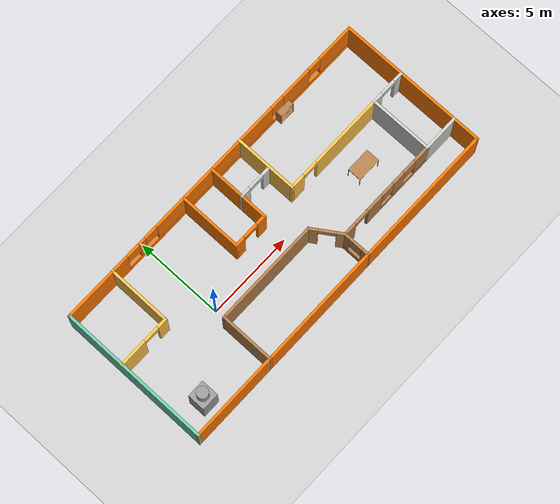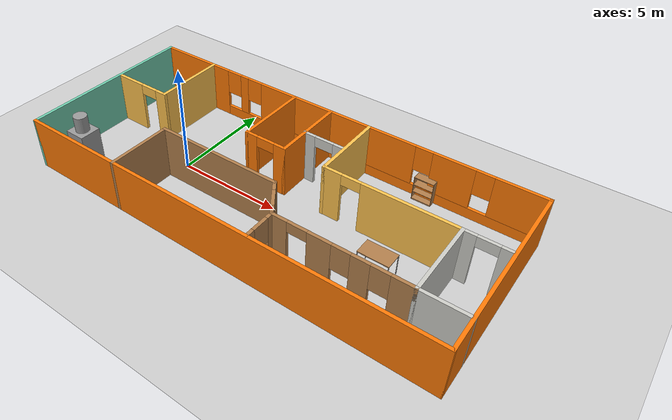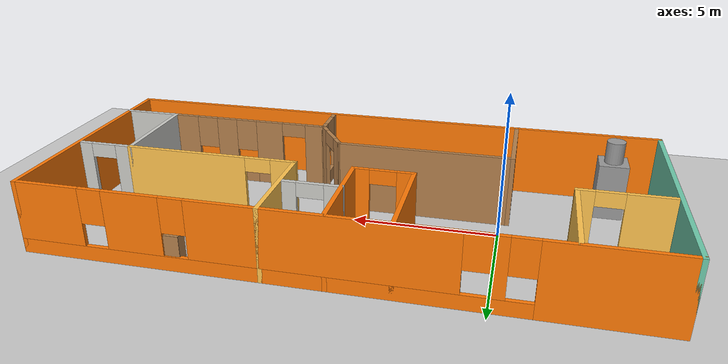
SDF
<sdf version="1.6">
 <world name="default">
  <model name="ground_plane">
   <static>1</static>
   <link name="link">
    <collision name="collision">
     <geometry><plane><normal>0 0 1</normal><size>100 100</size></plane></geometry>
     <surface><friction><ode><mu>100</mu><mu2>50</mu2></ode></friction></surface>
    </collision>
    <visual name="visual">
     <cast_shadows>0</cast_shadows>
     <geometry><plane><normal>0 0 1</normal><size>100 100</size></plane></geometry>
     <material>
      <script><uri>file://media/materials/scripts/gazebo.material</uri><name>Gazebo/Grey</name></script>
     </material>
    </visual>
   </link>
  </model>
  <model name="Building">
   <pose>4.7412 0.361822 0 0 -0 0</pose>
   <link name="Wall_0">
    <collision name="Wall_0_Collision">
     <geometry><box><size>20.15 0.15 2.5</size></box></geometry>
     <pose>0 0 1.25 0 -0 0</pose>
    </collision>
    <visual name="Wall_0_Visual">
     <pose>0 0 1.25 0 -0 0</pose>
     <geometry><box><size>20.15 0.15 2.5</size></box></geometry>
     <material>
      <script><uri>file://media/materials/scripts/gazebo.material</uri><name>Gazebo/Grey</name></script>
      <ambient>0.996078 0.47451 0.0196078 1</ambient>
     </material>
    </visual>
    <pose>0 -4.25 0 0 -0 0</pose>
   </link>
   <link name="Wall_10">
    <pose>-8.5 0.75 0 0 -0 3.14159</pose>
    <visual name="Wall_10_Visual_0">
     <pose>-1.26846 0 1.25 0 -0 0</pose>
     <geometry><box><size>0.613081 0.15 2.5</size></box></geometry>
     <material>
      <script><uri>file://media/materials/scripts/gazebo.material</uri><name>Gazebo/Grey</name></script>
      <ambient>1 0.764706 0.305882 1</ambient>
     </material>
    </visual>
    <collision name="Wall_10_Collision_0">
     <geometry><box><size>0.613081 0.15 2.5</size></box></geometry>
     <pose>-1.26846 0 1.25 0 -0 0</pose>
    </collision>
    <visual name="Wall_10_Visual_1">
     <pose>0.75654 0 1.25 0 -0 0</pose>
     <geometry><box><size>1.63692 0.15 2.5</size></box></geometry>
     <material>
      <script><uri>file://media/materials/scripts/gazebo.material</uri><name>Gazebo/Grey</name></script>
      <ambient>1 0.764706 0.305882 1</ambient>
     </material>
    </visual>
    <collision name="Wall_10_Collision_1">
     <geometry><box><size>1.63692 0.15 2.5</size></box></geometry>
     <pose>0.75654 0 1.25 0 -0 0</pose>
    </collision>
    <visual name="Wall_10_Visual_2">
     <pose>-0.511919 0 2.25 0 -0 0</pose>
     <geometry><box><size>0.9 0.15 0.5</size></box></geometry>
     <material>
      <script><uri>file://media/materials/scripts/gazebo.material</uri><name>Gazebo/Grey</name></script>
      <ambient>1 0.764706 0.305882 1</ambient>
     </material>
    </visual>
    <collision name="Wall_10_Collision_2">
     <geometry><box><size>0.9 0.15 0.5</size></box></geometry>
     <pose>-0.511919 0 2.25 0 -0 0</pose>
    </collision>
   </link>
   <link name="Wall_12">
    <collision name="Wall_12_Collision">
     <geometry><box><size>3.65 0.15 2.5</size></box></geometry>
     <pose>0 0 1.25 0 -0 0</pose>
    </collision>
    <visual name="Wall_12_Visual">
     <pose>0 0 1.25 0 -0 0</pose>
     <geometry><box><size>3.65 0.15 2.5</size></box></geometry>
     <material>
      <script><uri>file://media/materials/scripts/gazebo.material</uri><name>Gazebo/Grey</name></script>
      <ambient>0.996078 0.47451 0.0196078 1</ambient>
     </material>
    </visual>
    <pose>-2 2.5 0 0 0 -1.5708</pose>
   </link>
   <link name="Wall_14">
    <collision name="Wall_14_Collision">
     <geometry><box><size>3.65 0.15 2.5</size></box></geometry>
     <pose>0 0 1.25 0 -0 0</pose>
    </collision>
    <visual name="Wall_14_Visual">
     <pose>0 0 1.25 0 -0 0</pose>
     <geometry><box><size>3.65 0.15 2.5</size></box></geometry>
     <material>
      <script><uri>file://media/materials/scripts/gazebo.material</uri><name>Gazebo/Grey</name></script>
      <ambient>1 0.764706 0.305882 1</ambient>
     </material>
    </visual>
    <pose>2 2.5 0 0 -0 1.5708</pose>
   </link>
   <link name="Wall_16">
    <pose>-1 0.75 0 0 -0 0</pose>
    <visual name="Wall_16_Visual_0">
     <pose>-0.758614 0 1.25 0 -0 0</pose>
     <geometry><box><size>0.632771 0.15 2.5</size></box></geometry>
     <material>
      <script><uri>file://media/materials/scripts/gazebo.material</uri><name>Gazebo/Grey</name></script>
      <ambient>0.996078 0.47451 0.0196078 1</ambient>
     </material>
    </visual>
    <collision name="Wall_16_Collision_0">
     <geometry><box><size>0.632771 0.15 2.5</size></box></geometry>
     <pose>-0.758614 0 1.25 0 -0 0</pose>
    </collision>
    <visual name="Wall_16_Visual_1">
     <pose>0.766386 0 1.25 0 -0 0</pose>
     <geometry><box><size>0.617229 0.15 2.5</size></box></geometry>
     <material>
      <script><uri>file://media/materials/scripts/gazebo.material</uri><name>Gazebo/Grey</name></script>
      <ambient>0.996078 0.47451 0.0196078 1</ambient>
     </material>
    </visual>
    <collision name="Wall_16_Collision_1">
     <geometry><box><size>0.617229 0.15 2.5</size></box></geometry>
     <pose>0.766386 0 1.25 0 -0 0</pose>
    </collision>
    <visual name="Wall_16_Visual_2">
     <pose>0.007771 0 2.25 0 -0 0</pose>
     <geometry><box><size>0.9 0.15 0.5</size></box></geometry>
     <material>
      <script><uri>file://media/materials/scripts/gazebo.material</uri><name>Gazebo/Grey</name></script>
      <ambient>0.996078 0.47451 0.0196078 1</ambient>
     </material>
    </visual>
    <collision name="Wall_16_Collision_2">
     <geometry><box><size>0.9 0.15 0.5</size></box></geometry>
     <pose>0.007771 0 2.25 0 -0 0</pose>
    </collision>
   </link>
   <link name="Wall_17">
    <collision name="Wall_17_Collision">
     <geometry><box><size>3.65 0.15 2.5</size></box></geometry>
     <pose>0 0 1.25 0 -0 0</pose>
    </collision>
    <visual name="Wall_17_Visual">
     <pose>0 0 1.25 0 -0 0</pose>
     <geometry><box><size>3.65 0.15 2.5</size></box></geometry>
     <material>
      <script><uri>file://media/materials/scripts/gazebo.material</uri><name>Gazebo/Grey</name></script>
      <ambient>0.996078 0.47451 0.0196078 1</ambient>
     </material>
    </visual>
    <pose>0 2.5 0 0 -0 1.5708</pose>
   </link>
   <link name="Wall_19">
    <pose>1 2.25 0 0 -0 0</pose>
    <visual name="Wall_19_Visual_0">
     <pose>-0.761107 0 1.25 0 -0 0</pose>
     <geometry><box><size>0.627787 0.15 2.5</size></box></geometry>
     <material>
      <script><uri>file://media/materials/scripts/gazebo.material</uri><name>Gazebo/CeilingTiled</name></script>
      <ambient>1 0.764706 0.305882 1</ambient>
     </material>
    </visual>
    <collision name="Wall_19_Collision_0">
     <geometry><box><size>0.627787 0.15 2.5</size></box></geometry>
     <pose>-0.761107 0 1.25 0 -0 0</pose>
    </collision>
    <visual name="Wall_19_Visual_1">
     <pose>0.763893 0 1.25 0 -0 0</pose>
     <geometry><box><size>0.622213 0.15 2.5</size></box></geometry>
     <material>
      <script><uri>file://media/materials/scripts/gazebo.material</uri><name>Gazebo/CeilingTiled</name></script>
      <ambient>1 0.764706 0.305882 1</ambient>
     </material>
    </visual>
    <collision name="Wall_19_Collision_1">
     <geometry><box><size>0.622213 0.15 2.5</size></box></geometry>
     <pose>0.763893 0 1.25 0 -0 0</pose>
    </collision>
    <visual name="Wall_19_Visual_2">
     <pose>0.002787 0 2.25 0 -0 0</pose>
     <geometry><box><size>0.9 0.15 0.5</size></box></geometry>
     <material>
      <script><uri>file://media/materials/scripts/gazebo.material</uri><name>Gazebo/CeilingTiled</name></script>
      <ambient>1 0.764706 0.305882 1</ambient>
     </material>
    </visual>
    <collision name="Wall_19_Collision_2">
     <geometry><box><size>0.9 0.15 0.5</size></box></geometry>
     <pose>0.002787 0 2.25 0 -0 0</pose>
    </collision>
   </link>
   <link name="Wall_2">
    <collision name="Wall_2_Collision">
     <geometry><box><size>8.65 0.15 2.5</size></box></geometry>
     <pose>0 0 1.25 0 -0 0</pose>
    </collision>
    <visual name="Wall_2_Visual">
     <pose>0 0 1.25 0 -0 0</pose>
     <geometry><box><size>8.65 0.15 2.5</size></box></geometry>
     <material>
      <script><uri>file://media/materials/scripts/gazebo.material</uri><name>Gazebo/Grey</name></script>
      <ambient>0.435294 0.796078 0.67451 1</ambient>
     </material>
    </visual>
    <pose>-10 0 0 0 -0 1.5708</pose>
   </link>
   <link name="Wall_25">
    <collision name="Wall_25_Collision">
     <geometry><box><size>2.15 0.15 2.5</size></box></geometry>
     <pose>0 0 1.25 0 -0 0</pose>
    </collision>
    <visual name="Wall_25_Visual">
     <pose>0 0 1.25 0 -0 0</pose>
     <geometry><box><size>2.15 0.15 2.5</size></box></geometry>
     <material>
      <script><uri>file://media/materials/scripts/gazebo.material</uri><name>Gazebo/CeilingTiled</name></script>
      <ambient>1 1 1 1</ambient>
     </material>
    </visual>
    <pose>9 -2.75 0 0 -0 0</pose>
   </link>
   <link name="Wall_27">
    <pose>5 0.75 0 0 -0 0</pose>
    <visual name="Wall_27_Visual_0">
     <pose>-2.6173 0 1.25 0 -0 0</pose>
     <geometry><box><size>0.915403 0.15 2.5</size></box></geometry>
     <material>
      <script><uri>file://media/materials/scripts/gazebo.material</uri><name>Gazebo/Grey</name></script>
      <ambient>1 0.764706 0.305882 1</ambient>
     </material>
    </visual>
    <collision name="Wall_27_Collision_0">
     <geometry><box><size>0.915403 0.15 2.5</size></box></geometry>
     <pose>-2.6173 0 1.25 0 -0 0</pose>
    </collision>
    <visual name="Wall_27_Visual_1">
     <pose>0.907702 0 1.25 0 -0 0</pose>
     <geometry><box><size>4.3346 0.15 2.5</size></box></geometry>
     <material>
      <script><uri>file://media/materials/scripts/gazebo.material</uri><name>Gazebo/Grey</name></script>
      <ambient>1 0.764706 0.305882 1</ambient>
     </material>
    </visual>
    <collision name="Wall_27_Collision_1">
     <geometry><box><size>4.3346 0.15 2.5</size></box></geometry>
     <pose>0.907702 0 1.25 0 -0 0</pose>
    </collision>
    <visual name="Wall_27_Visual_2">
     <pose>-1.7096 0 2.25 0 -0 0</pose>
     <geometry><box><size>0.9 0.15 0.5</size></box></geometry>
     <material>
      <script><uri>file://media/materials/scripts/gazebo.material</uri><name>Gazebo/Grey</name></script>
      <ambient>1 0.764706 0.305882 1</ambient>
     </material>
    </visual>
    <collision name="Wall_27_Collision_2">
     <geometry><box><size>0.9 0.15 0.5</size></box></geometry>
     <pose>-1.7096 0 2.25 0 -0 0</pose>
    </collision>
   </link>
   <link name="Wall_29">
    <collision name="Wall_29_Collision">
     <geometry><box><size>3.65 0.15 2.5</size></box></geometry>
     <pose>0 0 1.25 0 -0 0</pose>
    </collision>
    <visual name="Wall_29_Visual">
     <pose>0 0 1.25 0 -0 0</pose>
     <geometry><box><size>3.65 0.15 2.5</size></box></geometry>
     <material>
      <script><uri>file://media/materials/scripts/gazebo.material</uri><name>Gazebo/CeilingTiled</name></script>
      <ambient>1 1 1 1</ambient>
     </material>
    </visual>
    <pose>8 -1 0 0 0 -1.5708</pose>
   </link>
   <link name="Wall_31">
    <pose>9 0.75 0 0 -0 0</pose>
    <visual name="Wall_31_Visual_0">
     <pose>-0.757777 0 1.25 0 -0 0</pose>
     <geometry><box><size>0.634446 0.15 2.5</size></box></geometry>
     <material>
      <script><uri>file://media/materials/scripts/gazebo.material</uri><name>Gazebo/CeilingTiled</name></script>
      <ambient>1 1 1 1</ambient>
     </material>
    </visual>
    <collision name="Wall_31_Collision_0">
     <geometry><box><size>0.634446 0.15 2.5</size></box></geometry>
     <pose>-0.757777 0 1.25 0 -0 0</pose>
    </collision>
    <visual name="Wall_31_Visual_1">
     <pose>0.767223 0 1.25 0 -0 0</pose>
     <geometry><box><size>0.615554 0.15 2.5</size></box></geometry>
     <material>
      <script><uri>file://media/materials/scripts/gazebo.material</uri><name>Gazebo/CeilingTiled</name></script>
      <ambient>1 1 1 1</ambient>
     </material>
    </visual>
    <collision name="Wall_31_Collision_1">
     <geometry><box><size>0.615554 0.15 2.5</size></box></geometry>
     <pose>0.767223 0 1.25 0 -0 0</pose>
    </collision>
    <visual name="Wall_31_Visual_2">
     <pose>0.009446 0 2.25 0 -0 0</pose>
     <geometry><box><size>0.9 0.15 0.5</size></box></geometry>
     <material>
      <script><uri>file://media/materials/scripts/gazebo.material</uri><name>Gazebo/CeilingTiled</name></script>
      <ambient>1 1 1 1</ambient>
     </material>
    </visual>
    <collision name="Wall_31_Collision_2">
     <geometry><box><size>0.9 0.15 0.5</size></box></geometry>
     <pose>0.009446 0 2.25 0 -0 0</pose>
    </collision>
   </link>
   <link name="Wall_35">
    <collision name="Wall_35_Collision">
     <geometry><box><size>3.15 0.15 2.5</size></box></geometry>
     <pose>0 0 1.25 0 -0 0</pose>
    </collision>
    <visual name="Wall_35_Visual">
     <pose>0 0 1.25 0 -0 0</pose>
     <geometry><box><size>3.15 0.15 2.5</size></box></geometry>
     <material>
      <script><uri>file://media/materials/scripts/gazebo.material</uri><name>Gazebo/Wood</name></script>
      <ambient>0.996078 0.47451 0.0196078 1</ambient>
     </material>
    </visual>
    <pose>-5 -2.75 0 0 0 -1.5708</pose>
   </link>
   <link name="Wall_37">
    <collision name="Wall_37_Collision">
     <geometry><box><size>6.15 0.15 2.5</size></box></geometry>
     <pose>0 0 1.25 0 -0 0</pose>
    </collision>
    <visual name="Wall_37_Visual">
     <pose>0 0 1.25 0 -0 0</pose>
     <geometry><box><size>6.15 0.15 2.5</size></box></geometry>
     <material>
      <script><uri>file://media/materials/scripts/gazebo.material</uri><name>Gazebo/Wood</name></script>
      <ambient>0.996078 0.47451 0.0196078 1</ambient>
     </material>
    </visual>
    <pose>-2 -1.25 0 0 -0 0</pose>
   </link>
   <link name="Wall_39">
    <pose>2 -3.5 0 0 -0 1.5708</pose>
    <visual name="Wall_39_Visual_0">
     <pose>-0.594128 0 1.25 0 -0 0</pose>
     <geometry><box><size>0.461743 0.15 2.5</size></box></geometry>
     <material>
      <script><uri>file://media/materials/scripts/gazebo.material</uri><name>Gazebo/Wood</name></script>
      <ambient>0.996078 0.47451 0.0196078 1</ambient>
     </material>
    </visual>
    <collision name="Wall_39_Collision_0">
     <geometry><box><size>0.461743 0.15 2.5</size></box></geometry>
     <pose>-0.594128 0 1.25 0 -0 0</pose>
    </collision>
    <visual name="Wall_39_Visual_1">
     <pose>0.230872 0 0.25 0 -0 0</pose>
     <geometry><box><size>1.18826 0.15 0.5</size></box></geometry>
     <material>
      <script><uri>file://media/materials/scripts/gazebo.material</uri><name>Gazebo/Wood</name></script>
      <ambient>0.996078 0.47451 0.0196078 1</ambient>
     </material>
    </visual>
    <collision name="Wall_39_Collision_1">
     <geometry><box><size>1.18826 0.15 0.5</size></box></geometry>
     <pose>0.230872 0 0.25 0 -0 0</pose>
    </collision>
    <visual name="Wall_39_Visual_2">
     <pose>0.630872 0 1.5 0 -0 0</pose>
     <geometry><box><size>0.388257 0.15 2</size></box></geometry>
     <material>
      <script><uri>file://media/materials/scripts/gazebo.material</uri><name>Gazebo/Wood</name></script>
      <ambient>0.996078 0.47451 0.0196078 1</ambient>
     </material>
    </visual>
    <collision name="Wall_39_Collision_2">
     <geometry><box><size>0.388257 0.15 2</size></box></geometry>
     <pose>0.630872 0 1.5 0 -0 0</pose>
    </collision>
    <visual name="Wall_39_Visual_3">
     <pose>0.036743 0 1.9 0 -0 0</pose>
     <geometry><box><size>0.8 0.15 1.2</size></box></geometry>
     <material>
      <script><uri>file://media/materials/scripts/gazebo.material</uri><name>Gazebo/Wood</name></script>
      <ambient>0.996078 0.47451 0.0196078 1</ambient>
     </material>
    </visual>
    <collision name="Wall_39_Collision_3">
     <geometry><box><size>0.8 0.15 1.2</size></box></geometry>
     <pose>0.036743 0 1.9 0 -0 0</pose>
    </collision>
   </link>
   <link name="Wall_4">
    <pose>0 4.25 0 0 -0 0</pose>
    <visual name="Wall_4_Visual_0">
     <pose>-8.04057 0 1.25 0 -0 0</pose>
     <geometry><box><size>4.06886 0.15 2.5</size></box></geometry>
     <material>
      <script><uri>file://media/materials/scripts/gazebo.material</uri><name>Gazebo/Grey</name></script>
      <ambient>0.996078 0.47451 0.0196078 1</ambient>
     </material>
    </visual>
    <collision name="Wall_4_Collision_0">
     <geometry><box><size>4.06886 0.15 2.5</size></box></geometry>
     <pose>-8.04057 0 1.25 0 -0 0</pose>
    </collision>
    <visual name="Wall_4_Visual_1">
     <pose>2.03443 0 0.25 0 -0 0</pose>
     <geometry><box><size>16.0811 0.15 0.5</size></box></geometry>
     <material>
      <script><uri>file://media/materials/scripts/gazebo.material</uri><name>Gazebo/Grey</name></script>
      <ambient>0.996078 0.47451 0.0196078 1</ambient>
     </material>
    </visual>
    <collision name="Wall_4_Collision_1">
     <geometry><box><size>16.0811 0.15 0.5</size></box></geometry>
     <pose>2.03443 0 0.25 0 -0 0</pose>
    </collision>
    <visual name="Wall_4_Visual_2">
     <pose>-4.97904 0 1.5 0 -0 0</pose>
     <geometry><box><size>0.4542 0.15 2</size></box></geometry>
     <material>
      <script><uri>file://media/materials/scripts/gazebo.material</uri><name>Gazebo/Grey</name></script>
      <ambient>0.996078 0.47451 0.0196078 1</ambient>
     </material>
    </visual>
    <collision name="Wall_4_Collision_2">
     <geometry><box><size>0.4542 0.15 2</size></box></geometry>
     <pose>-4.97904 0 1.5 0 -0 0</pose>
    </collision>
    <visual name="Wall_4_Visual_3">
     <pose>0.175411 0 1.5 0 -0 0</pose>
     <geometry><box><size>8.25471 0.15 2</size></box></geometry>
     <material>
      <script><uri>file://media/materials/scripts/gazebo.material</uri><name>Gazebo/Grey</name></script>
      <ambient>0.996078 0.47451 0.0196078 1</ambient>
     </material>
    </visual>
    <collision name="Wall_4_Collision_3">
     <geometry><box><size>8.25471 0.15 2</size></box></geometry>
     <pose>0.175411 0 1.5 0 -0 0</pose>
    </collision>
    <visual name="Wall_4_Visual_4">
     <pose>6.04873 0 1.5 0 -0 0</pose>
     <geometry><box><size>1.89194 0.15 2</size></box></geometry>
     <material>
      <script><uri>file://media/materials/scripts/gazebo.material</uri><name>Gazebo/Grey</name></script>
      <ambient>0.996078 0.47451 0.0196078 1</ambient>
     </material>
    </visual>
    <collision name="Wall_4_Collision_4">
     <geometry><box><size>1.89194 0.15 2</size></box></geometry>
     <pose>6.04873 0 1.5 0 -0 0</pose>
    </collision>
    <visual name="Wall_4_Visual_5">
     <pose>8.93485 0 1.5 0 -0 0</pose>
     <geometry><box><size>2.2803 0.15 2</size></box></geometry>
     <material>
      <script><uri>file://media/materials/scripts/gazebo.material</uri><name>Gazebo/Grey</name></script>
      <ambient>0.996078 0.47451 0.0196078 1</ambient>
     </material>
    </visual>
    <collision name="Wall_4_Collision_5">
     <geometry><box><size>2.2803 0.15 2</size></box></geometry>
     <pose>8.93485 0 1.5 0 -0 0</pose>
    </collision>
    <visual name="Wall_4_Visual_6">
     <pose>-5.60614 0 1.9 0 -0 0</pose>
     <geometry><box><size>0.8 0.15 1.2</size></box></geometry>
     <material>
      <script><uri>file://media/materials/scripts/gazebo.material</uri><name>Gazebo/Grey</name></script>
      <ambient>0.996078 0.47451 0.0196078 1</ambient>
     </material>
    </visual>
    <collision name="Wall_4_Collision_6">
     <geometry><box><size>0.8 0.15 1.2</size></box></geometry>
     <pose>-5.60614 0 1.9 0 -0 0</pose>
    </collision>
    <visual name="Wall_4_Visual_7">
     <pose>-4.35194 0 1.9 0 -0 0</pose>
     <geometry><box><size>0.8 0.15 1.2</size></box></geometry>
     <material>
      <script><uri>file://media/materials/scripts/gazebo.material</uri><name>Gazebo/Grey</name></script>
      <ambient>0.996078 0.47451 0.0196078 1</ambient>
     </material>
    </visual>
    <collision name="Wall_4_Collision_7">
     <geometry><box><size>0.8 0.15 1.2</size></box></geometry>
     <pose>-4.35194 0 1.9 0 -0 0</pose>
    </collision>
    <visual name="Wall_4_Visual_8">
     <pose>4.70276 0 1.9 0 -0 0</pose>
     <geometry><box><size>0.8 0.15 1.2</size></box></geometry>
     <material>
      <script><uri>file://media/materials/scripts/gazebo.material</uri><name>Gazebo/Grey</name></script>
      <ambient>0.996078 0.47451 0.0196078 1</ambient>
     </material>
    </visual>
    <collision name="Wall_4_Collision_8">
     <geometry><box><size>0.8 0.15 1.2</size></box></geometry>
     <pose>4.70276 0 1.9 0 -0 0</pose>
    </collision>
    <visual name="Wall_4_Visual_9">
     <pose>7.3947 0 1.9 0 -0 0</pose>
     <geometry><box><size>0.8 0.15 1.2</size></box></geometry>
     <material>
      <script><uri>file://media/materials/scripts/gazebo.material</uri><name>Gazebo/Grey</name></script>
      <ambient>0.996078 0.47451 0.0196078 1</ambient>
     </material>
    </visual>
    <collision name="Wall_4_Collision_9">
     <geometry><box><size>0.8 0.15 1.2</size></box></geometry>
     <pose>7.3947 0 1.9 0 -0 0</pose>
    </collision>
   </link>
   <link name="Wall_41">
    <pose>1.5 -2 0 0 0 -0.982794</pose>
    <visual name="Wall_41_Visual_0">
     <pose>-0.69985 0 1.25 0 -0 0</pose>
     <geometry><box><size>0.553076 0.15 2.5</size></box></geometry>
     <material>
      <script><uri>file://media/materials/scripts/gazebo.material</uri><name>Gazebo/Wood</name></script>
      <ambient>0.996078 0.47451 0.0196078 1</ambient>
     </material>
    </visual>
    <collision name="Wall_41_Collision_0">
     <geometry><box><size>0.553076 0.15 2.5</size></box></geometry>
     <pose>-0.69985 0 1.25 0 -0 0</pose>
    </collision>
    <visual name="Wall_41_Visual_1">
     <pose>0.726538 0 1.25 0 -0 0</pose>
     <geometry><box><size>0.4997 0.15 2.5</size></box></geometry>
     <material>
      <script><uri>file://media/materials/scripts/gazebo.material</uri><name>Gazebo/Wood</name></script>
      <ambient>0.996078 0.47451 0.0196078 1</ambient>
     </material>
    </visual>
    <collision name="Wall_41_Collision_1">
     <geometry><box><size>0.4997 0.15 2.5</size></box></geometry>
     <pose>0.726538 0 1.25 0 -0 0</pose>
    </collision>
    <visual name="Wall_41_Visual_2">
     <pose>0.026688 0 2.25 0 -0 0</pose>
     <geometry><box><size>0.9 0.15 0.5</size></box></geometry>
     <material>
      <script><uri>file://media/materials/scripts/gazebo.material</uri><name>Gazebo/Wood</name></script>
      <ambient>0.996078 0.47451 0.0196078 1</ambient>
     </material>
    </visual>
    <collision name="Wall_41_Collision_2">
     <geometry><box><size>0.9 0.15 0.5</size></box></geometry>
     <pose>0.026688 0 2.25 0 -0 0</pose>
    </collision>
   </link>
   <link name="Wall_43">
    <pose>5 -2.75 0 0 -0 0</pose>
    <visual name="Wall_43_Visual_0">
     <pose>-2.67402 0 1.25 0 -0 0</pose>
     <geometry><box><size>0.801957 0.15 2.5</size></box></geometry>
     <material>
      <script><uri>file://media/materials/scripts/gazebo.material</uri><name>Gazebo/Wood</name></script>
      <ambient>1 1 1 1</ambient>
     </material>
    </visual>
    <collision name="Wall_43_Collision_0">
     <geometry><box><size>0.801957 0.15 2.5</size></box></geometry>
     <pose>-2.67402 0 1.25 0 -0 0</pose>
    </collision>
    <visual name="Wall_43_Visual_1">
     <pose>-0.853736 0 1.25 0 -0 0</pose>
     <geometry><box><size>1.03861 0.15 2.5</size></box></geometry>
     <material>
      <script><uri>file://media/materials/scripts/gazebo.material</uri><name>Gazebo/Wood</name></script>
      <ambient>1 1 1 1</ambient>
     </material>
    </visual>
    <collision name="Wall_43_Collision_1">
     <geometry><box><size>1.03861 0.15 2.5</size></box></geometry>
     <pose>-0.853736 0 1.25 0 -0 0</pose>
    </collision>
    <visual name="Wall_43_Visual_2">
     <pose>1.37029 0 0.25 0 -0 0</pose>
     <geometry><box><size>3.40943 0.15 0.5</size></box></geometry>
     <material>
      <script><uri>file://media/materials/scripts/gazebo.material</uri><name>Gazebo/Wood</name></script>
      <ambient>1 1 1 1</ambient>
     </material>
    </visual>
    <collision name="Wall_43_Collision_2">
     <geometry><box><size>3.40943 0.15 0.5</size></box></geometry>
     <pose>1.37029 0 0.25 0 -0 0</pose>
    </collision>
    <visual name="Wall_43_Visual_3">
     <pose>0.863577 0 1.5 0 -0 0</pose>
     <geometry><box><size>0.796012 0.15 2</size></box></geometry>
     <material>
      <script><uri>file://media/materials/scripts/gazebo.material</uri><name>Gazebo/Wood</name></script>
      <ambient>1 1 1 1</ambient>
     </material>
    </visual>
    <collision name="Wall_43_Collision_3">
     <geometry><box><size>0.796012 0.15 2</size></box></geometry>
     <pose>0.863577 0 1.5 0 -0 0</pose>
    </collision>
    <visual name="Wall_43_Visual_4">
     <pose>2.56829 0 1.5 0 -0 0</pose>
     <geometry><box><size>1.01342 0.15 2</size></box></geometry>
     <material>
      <script><uri>file://media/materials/scripts/gazebo.material</uri><name>Gazebo/Wood</name></script>
      <ambient>1 1 1 1</ambient>
     </material>
    </visual>
    <collision name="Wall_43_Collision_4">
     <geometry><box><size>1.01342 0.15 2</size></box></geometry>
     <pose>2.56829 0 1.5 0 -0 0</pose>
    </collision>
    <visual name="Wall_43_Visual_5">
     <pose>0.065571 0 1.9 0 -0 0</pose>
     <geometry><box><size>0.8 0.15 1.2</size></box></geometry>
     <material>
      <script><uri>file://media/materials/scripts/gazebo.material</uri><name>Gazebo/Wood</name></script>
      <ambient>1 1 1 1</ambient>
     </material>
    </visual>
    <collision name="Wall_43_Collision_5">
     <geometry><box><size>0.8 0.15 1.2</size></box></geometry>
     <pose>0.065571 0 1.9 0 -0 0</pose>
    </collision>
    <visual name="Wall_43_Visual_6">
     <pose>1.66158 0 1.9 0 -0 0</pose>
     <geometry><box><size>0.8 0.15 1.2</size></box></geometry>
     <material>
      <script><uri>file://media/materials/scripts/gazebo.material</uri><name>Gazebo/Wood</name></script>
      <ambient>1 1 1 1</ambient>
     </material>
    </visual>
    <collision name="Wall_43_Collision_6">
     <geometry><box><size>0.8 0.15 1.2</size></box></geometry>
     <pose>1.66158 0 1.9 0 -0 0</pose>
    </collision>
    <visual name="Wall_43_Visual_7">
     <pose>-1.82304 0 2.25 0 -0 0</pose>
     <geometry><box><size>0.9 0.15 0.5</size></box></geometry>
     <material>
      <script><uri>file://media/materials/scripts/gazebo.material</uri><name>Gazebo/Wood</name></script>
      <ambient>1 1 1 1</ambient>
     </material>
    </visual>
    <collision name="Wall_43_Collision_7">
     <geometry><box><size>0.9 0.15 0.5</size></box></geometry>
     <pose>-1.82304 0 2.25 0 -0 0</pose>
    </collision>
   </link>
   <link name="Wall_6">
    <collision name="Wall_6_Collision">
     <geometry><box><size>8.65 0.15 2.5</size></box></geometry>
     <pose>0 0 1.25 0 -0 0</pose>
    </collision>
    <visual name="Wall_6_Visual">
     <pose>0 0 1.25 0 -0 0</pose>
     <geometry><box><size>8.65 0.15 2.5</size></box></geometry>
     <material>
      <script><uri>file://media/materials/scripts/gazebo.material</uri><name>Gazebo/Grey</name></script>
      <ambient>0.996078 0.47451 0.0196078 1</ambient>
     </material>
    </visual>
    <pose>10 0 0 0 0 -1.5708</pose>
   </link>
   <link name="Wall_8">
    <collision name="Wall_8_Collision">
     <geometry><box><size>3.65 0.15 2.5</size></box></geometry>
     <pose>0 0 1.25 0 -0 0</pose>
    </collision>
    <visual name="Wall_8_Visual">
     <pose>0 0 1.25 0 -0 0</pose>
     <geometry><box><size>3.65 0.15 2.5</size></box></geometry>
     <material>
      <script><uri>file://media/materials/scripts/gazebo.material</uri><name>Gazebo/Grey</name></script>
      <ambient>1 0.764706 0.305882 1</ambient>
     </material>
    </visual>
    <pose>-7 2.5 0 0 0 -1.5708</pose>
   </link>
   <static>1</static>
  </model>
  <model name="water_dispenser_1">
   <link name="link_5">
    <pose>-10.728 -6.39003 1.64708 0 -0 0</pose>
    <inertial>
     <mass>1.9827</mass>
     <inertia>
      <ixx>0.814745</ixx>
      <ixy>0</ixy>
      <ixz>0</ixz>
      <iyy>0.814745</iyy>
      <iyz>0</iyz>
      <izz>0.330451</izz>
     </inertia>
    </inertial>
    <visual name="visual">
     <geometry><box><size>1 1 1.9827</size></box></geometry>
     <material>
      <lighting>1</lighting>
      <script><uri>file://media/materials/scripts/gazebo.material</uri><name>Gazebo/Grey</name></script>
      <ambient>0.3 0.3 0.3 1</ambient>
      <diffuse>0.7 0.7 0.7 1</diffuse>
      <specular>0.01 0.01 0.01 1</specular>
      <emissive>0 0 0 1</emissive>
      <shader type="vertex"><normal_map>__default__</normal_map></shader>
     </material>
    </visual>
    <collision name="collision">
     <geometry><box><size>1 1 1.9827</size></box></geometry>
     <surface>
      <friction>
       <ode><mu>1</mu><mu2>1</mu2><fdir1>0 0 0</fdir1><slip1>0</slip1><slip2>0</slip2></ode>
       <torsional>
        <coefficient>1</coefficient>
        <patch_radius>0</patch_radius>
        <surface_radius>0</surface_radius>
        <use_patch_radius>1</use_patch_radius>
        <ode><slip>0</slip></ode>
       </torsional>
      </friction>
      <bounce><restitution_coefficient>0</restitution_coefficient><threshold>1e+06</threshold></bounce>
      <contact>
       <collide_without_contact>0</collide_without_contact>
       <collide_without_contact_bitmask>1</collide_without_contact_bitmask>
       <collide_bitmask>1</collide_bitmask>
       <ode>
        <soft_cfm>0</soft_cfm>
        <soft_erp>0.2</soft_erp>
        <kp>1e+13</kp>
        <kd>1</kd>
        <max_vel>0.01</max_vel>
        <min_depth>0</min_depth>
       </ode>
       <bullet>
        <split_impulse>1</split_impulse>
        <split_impulse_penetration_threshold>-0.01</split_impulse_penetration_threshold>
        <soft_cfm>0</soft_cfm>
        <soft_erp>0.2</soft_erp>
        <kp>1e+13</kp>
        <kd>1</kd>
       </bullet>
      </contact>
     </surface>
    </collision>
   </link>
   <link name="link_6">
    <pose>-10.728 -6.39003 3.01806 0 -0 0</pose>
    <inertial>
     <mass>0.305954</mass>
     <inertia>
      <ixx>0.0224036</ixx>
      <ixy>0</ixy>
      <ixz>0</ixz>
      <iyy>0.0224036</iyy>
      <iyz>0</iyz>
      <izz>0.015411</izz>
     </inertia>
    </inertial>
    <visual name="visual">
     <geometry><cylinder><radius>0.317396</radius><length>0.759266</length></cylinder></geometry>
     <material>
      <lighting>1</lighting>
      <script><uri>file://media/materials/scripts/gazebo.material</uri><name>Gazebo/Grey</name></script>
      <ambient>0.3 0.3 0.3 1</ambient>
      <diffuse>0.7 0.7 0.7 1</diffuse>
      <specular>0.01 0.01 0.01 1</specular>
      <emissive>0 0 0 1</emissive>
     </material>
    </visual>
    <collision name="collision">
     <geometry><cylinder><radius>0.317396</radius><length>0.759266</length></cylinder></geometry>
     <surface>
      <friction>
       <ode><mu>1</mu><mu2>1</mu2><fdir1>0 0 0</fdir1><slip1>0</slip1><slip2>0</slip2></ode>
       <torsional>
        <coefficient>1</coefficient>
        <patch_radius>0</patch_radius>
        <surface_radius>0</surface_radius>
        <use_patch_radius>1</use_patch_radius>
        <ode><slip>0</slip></ode>
       </torsional>
      </friction>
      <bounce><restitution_coefficient>0</restitution_coefficient><threshold>1e+06</threshold></bounce>
      <contact>
       <collide_without_contact>0</collide_without_contact>
       <collide_without_contact_bitmask>1</collide_without_contact_bitmask>
       <collide_bitmask>1</collide_bitmask>
       <ode>
        <soft_cfm>0</soft_cfm>
        <soft_erp>0.2</soft_erp>
        <kp>1e+13</kp>
        <kd>1</kd>
        <max_vel>0.01</max_vel>
        <min_depth>0</min_depth>
       </ode>
       <bullet>
        <split_impulse>1</split_impulse>
        <split_impulse_penetration_threshold>-0.01</split_impulse_penetration_threshold>
        <soft_cfm>0</soft_cfm>
        <soft_erp>0.2</soft_erp>
        <kp>1e+13</kp>
        <kd>1</kd>
       </bullet>
      </contact>
     </surface>
    </collision>
   </link>
   <joint name="link_5_JOINT_9" type="revolute">
    <parent>link_5</parent>
    <child>link_6</child>
    <axis>
     <xyz>1 0 0</xyz>
     <use_parent_model_frame>0</use_parent_model_frame>
     <limit>
      <lower>-1.79769e+308</lower>
      <upper>1.79769e+308</upper>
      <effort>-1</effort>
      <velocity>-1</velocity>
     </limit>
     <dynamics>
      <spring_reference>0</spring_reference>
      <spring_stiffness>0</spring_stiffness>
      <damping>0</damping>
      <friction>0</friction>
     </dynamics>
    </axis>
    <physics>
     <ode><limit><cfm>0</cfm><erp>0.2</erp></limit><suspension><cfm>0</cfm><erp>0.2</erp></suspension></ode>
    </physics>
   </joint>
   <static>0</static>
   <pose>7.06129 3.71641 -0.655697 0 -3e-06 7.8e-05</pose>
  </model>
  <model name="table_0">
   <static>0</static>
   <link name="link">
    <collision name="surface">
     <pose>0 0 1 0 -0 0</pose>
     <geometry><box><size>1.5 0.8 0.03</size></box></geometry>
     <surface><friction><ode><mu>0.6</mu><mu2>0.6</mu2></ode></friction></surface>
    </collision>
    <visual name="visual1">
     <pose>0 0 1 0 -0 0</pose>
     <geometry><box><size>1.4 0.8 0.04</size></box></geometry>
     <material>
      <script><uri>file://media/materials/scripts/gazebo.material</uri><name>Gazebo/Wood</name></script>
     </material>
    </visual>
    <collision name="front_left_leg">
     <pose>0.68 0.38 0.5 0 -0 0</pose>
     <geometry><cylinder><radius>0.02</radius><length>1</length></cylinder></geometry>
    </collision>
    <visual name="front_left_leg">
     <pose>0.68 0.38 0.5 0 -0 0</pose>
     <geometry><cylinder><radius>0.02</radius><length>1</length></cylinder></geometry>
     <material>
      <script><uri>file://media/materials/scripts/gazebo.material</uri><name>Gazebo/Grey</name></script>
     </material>
    </visual>
    <collision name="front_right_leg">
     <pose>0.68 -0.38 0.5 0 -0 0</pose>
     <geometry><cylinder><radius>0.02</radius><length>1</length></cylinder></geometry>
    </collision>
    <visual name="front_right_leg">
     <pose>0.68 -0.38 0.5 0 -0 0</pose>
     <geometry><cylinder><radius>0.02</radius><length>1</length></cylinder></geometry>
     <material>
      <script><uri>file://media/materials/scripts/gazebo.material</uri><name>Gazebo/Grey</name></script>
     </material>
    </visual>
    <collision name="back_right_leg">
     <pose>-0.68 -0.38 0.5 0 -0 0</pose>
     <geometry><cylinder><radius>0.02</radius><length>1</length></cylinder></geometry>
    </collision>
    <visual name="back_right_leg">
     <pose>-0.68 -0.38 0.5 0 -0 0</pose>
     <geometry><cylinder><radius>0.02</radius><length>1</length></cylinder></geometry>
     <material>
      <script><uri>file://media/materials/scripts/gazebo.material</uri><name>Gazebo/Grey</name></script>
     </material>
    </visual>
    <collision name="back_left_leg">
     <pose>-0.68 0.38 0.5 0 -0 0</pose>
     <geometry><cylinder><radius>0.02</radius><length>1</length></cylinder></geometry>
    </collision>
    <visual name="back_left_leg">
     <pose>-0.68 0.38 0.5 0 -0 0</pose>
     <geometry><cylinder><radius>0.02</radius><length>1</length></cylinder></geometry>
     <material>
      <script><uri>file://media/materials/scripts/gazebo.material</uri><name>Gazebo/Grey</name></script>
     </material>
    </visual>
    <inertial>
     <inertia><ixx>1</ixx><ixy>0</ixy><ixz>0</ixz><iyy>1</iyy><iyz>0</iyz><izz>1</izz></inertia>
     <mass>1</mass>
    </inertial>
   </link>
   <pose>10.3086 -0.452916 -8e-06 1e-06 -0 0</pose>
  </model>
  <model name="bookshelf">
   <static>1</static>
   <link name="link">
    <inertial><mass>1</mass></inertial>
    <collision name="back">
     <pose>0 0.005 0.6 0 -0 0</pose>
     <geometry><box><size>0.9 0.01 1.2</size></box></geometry>
    </collision>
    <visual name="visual1">
     <pose>0 0.005 0.6 0 -0 0</pose>
     <geometry><box><size>0.9 0.01 1.2</size></box></geometry>
     <material>
      <script><uri>file://media/materials/scripts/gazebo.material</uri><name>Gazebo/Wood</name></script>
     </material>
    </visual>
    <collision name="left_side">
     <pose>0.45 -0.195 0.6 0 -0 0</pose>
     <geometry><box><size>0.02 0.4 1.2</size></box></geometry>
    </collision>
    <visual name="visual2">
     <pose>0.45 -0.195 0.6 0 -0 0</pose>
     <geometry><box><size>0.02 0.4 1.2</size></box></geometry>
     <material>
      <script><uri>file://media/materials/scripts/gazebo.material</uri><name>Gazebo/Wood</name></script>
     </material>
    </visual>
    <collision name="right_side">
     <pose>-0.45 -0.195 0.6 0 -0 0</pose>
     <geometry><box><size>0.02 0.4 1.2</size></box></geometry>
    </collision>
    <visual name="visual3">
     <pose>-0.45 -0.195 0.6 0 -0 0</pose>
     <geometry><box><size>0.02 0.4 1.2</size></box></geometry>
     <material>
      <script><uri>file://media/materials/scripts/gazebo.material</uri><name>Gazebo/Wood</name></script>
     </material>
    </visual>
    <collision name="bottom">
     <pose>0 -0.195 0.03 0 -0 0</pose>
     <geometry><box><size>0.88 0.4 0.06</size></box></geometry>
    </collision>
    <visual name="visual4">
     <pose>0 -0.195 0.03 0 -0 0</pose>
     <geometry><box><size>0.88 0.4 0.06</size></box></geometry>
     <material>
      <script><uri>file://media/materials/scripts/gazebo.material</uri><name>Gazebo/Wood</name></script>
     </material>
    </visual>
    <collision name="top">
     <pose>0 -0.195 1.19 0 -0 0</pose>
     <geometry><box><size>0.88 0.4 0.02</size></box></geometry>
    </collision>
    <visual name="visual5">
     <pose>0 -0.195 1.19 0 -0 0</pose>
     <geometry><box><size>0.88 0.4 0.02</size></box></geometry>
     <material>
      <script><uri>file://media/materials/scripts/gazebo.material</uri><name>Gazebo/Wood</name></script>
     </material>
    </visual>
    <collision name="low_shelf">
     <pose>0 -0.195 0.43 0 -0 0</pose>
     <geometry><box><size>0.88 0.4 0.02</size></box></geometry>
    </collision>
    <visual name="visual6">
     <pose>0 -0.195 0.43 0 -0 0</pose>
     <geometry><box><size>0.88 0.4 0.02</size></box></geometry>
     <material>
      <script><uri>file://media/materials/scripts/gazebo.material</uri><name>Gazebo/Wood</name></script>
     </material>
    </visual>
    <collision name="high_shelf">
     <pose>0 -0.195 0.8 0 -0 0</pose>
     <geometry><box><size>0.88 0.4 0.02</size></box></geometry>
    </collision>
    <visual name="visual7">
     <pose>0 -0.195 0.8 0 -0 0</pose>
     <geometry><box><size>0.88 0.4 0.02</size></box></geometry>
     <material>
      <script><uri>file://media/materials/scripts/gazebo.material</uri><name>Gazebo/Wood</name></script>
     </material>
    </visual>
   </link>
   <pose>9.79843 4.61988 0 0 -0 0</pose>
  </model>
 </world>
</sdf>
